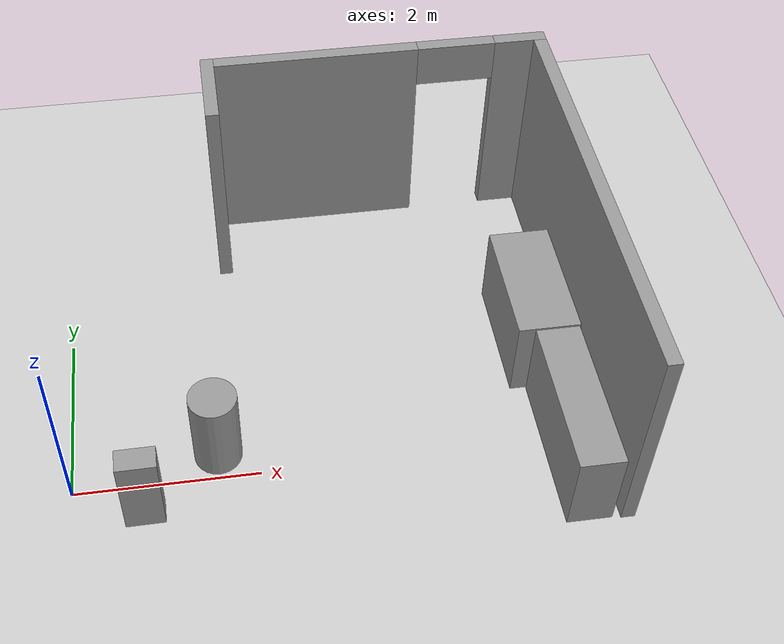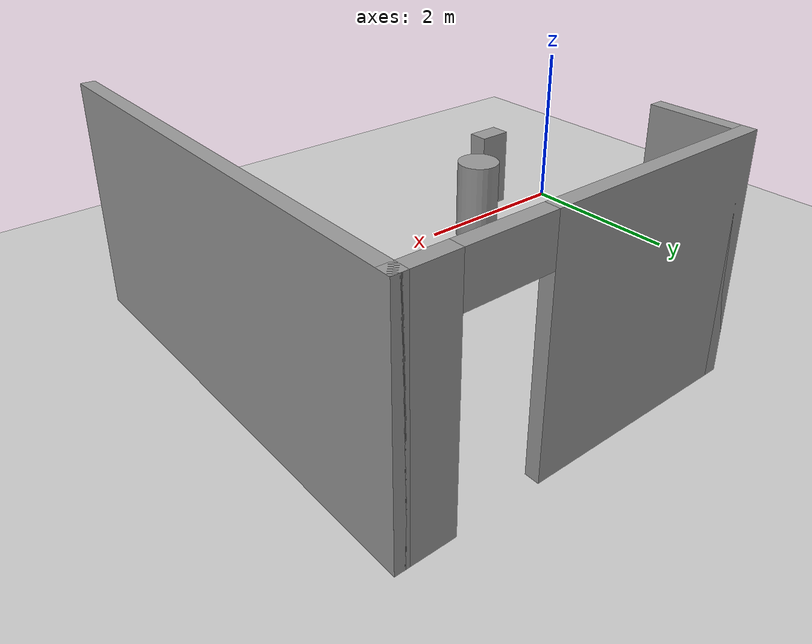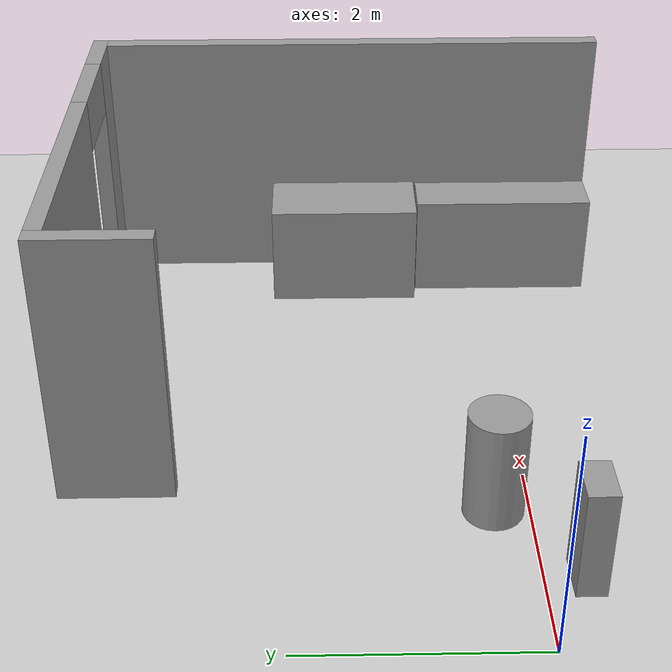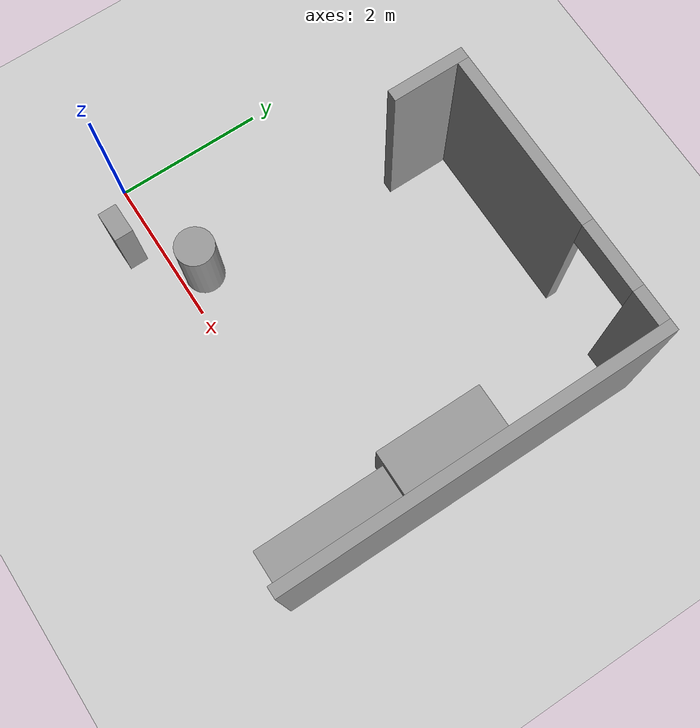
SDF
<sdf version="1.6">
 <world name="default">
  <model name="ground_plane">
   <static>1</static>
   <link name="link">
    <collision name="collision">
     <geometry><plane><normal>0 0 1</normal><size>100 100</size></plane></geometry>
     <surface><friction><ode><mu>100</mu><mu2>50</mu2></ode></friction></surface>
    </collision>
    <visual name="visual">
     <cast_shadows>0</cast_shadows>
     <geometry><plane><normal>0 0 1</normal><size>100 100</size></plane></geometry>
     <material>
      <script><uri>file://media/materials/scripts/gazebo.material</uri><name>Gazebo/Grey</name></script>
     </material>
    </visual>
   </link>
  </model>
  <model name="cma_L5">
   <pose>3.77502 1.45512 0 0 -0 0</pose>
   <link name="Wall_0">
    <collision name="Wall_0_Collision">
     <geometry><box><size>1 0.15 2.5</size></box></geometry>
     <pose>0 0 1.25 0 -0 0</pose>
    </collision>
    <visual name="Wall_0_Visual">
     <pose>0 0 1.25 0 -0 0</pose>
     <geometry><box><size>1 0.15 2.5</size></box></geometry>
     <material>
      <script><uri>file://media/materials/scripts/gazebo.material</uri><name>Gazebo/Grey</name></script>
      <ambient>1 1 1 1</ambient>
     </material>
    </visual>
    <pose>-1.925 2 0 0 -0 1.5708</pose>
   </link>
   <link name="Wall_1">
    <pose>0 2.425 0 0 -0 0</pose>
    <visual name="Wall_1_Visual_0">
     <pose>-0.7525 0 1.25 0 -0 0</pose>
     <geometry><box><size>2.495 0.15 2.5</size></box></geometry>
     <material>
      <script><uri>file://media/materials/scripts/gazebo.material</uri><name>Gazebo/Grey</name></script>
      <ambient>1 1 1 1</ambient>
     </material>
    </visual>
    <collision name="Wall_1_Collision_0">
     <geometry><box><size>2.495 0.15 2.5</size></box></geometry>
     <pose>-0.7525 0 1.25 0 -0 0</pose>
    </collision>
    <visual name="Wall_1_Visual_1">
     <pose>1.6975 0 1.25 0 -0 0</pose>
     <geometry><box><size>0.605 0.15 2.5</size></box></geometry>
     <material>
      <script><uri>file://media/materials/scripts/gazebo.material</uri><name>Gazebo/Grey</name></script>
      <ambient>1 1 1 1</ambient>
     </material>
    </visual>
    <collision name="Wall_1_Collision_1">
     <geometry><box><size>0.605 0.15 2.5</size></box></geometry>
     <pose>1.6975 0 1.25 0 -0 0</pose>
    </collision>
    <visual name="Wall_1_Visual_2">
     <pose>0.945 0 2.25 0 -0 0</pose>
     <geometry><box><size>0.9 0.15 0.5</size></box></geometry>
     <material>
      <script><uri>file://media/materials/scripts/gazebo.material</uri><name>Gazebo/Grey</name></script>
      <ambient>1 1 1 1</ambient>
     </material>
    </visual>
    <collision name="Wall_1_Collision_2">
     <geometry><box><size>0.9 0.15 0.5</size></box></geometry>
     <pose>0.945 0 2.25 0 -0 0</pose>
    </collision>
   </link>
   <link name="Wall_3">
    <collision name="Wall_3_Collision">
     <geometry><box><size>5 0.15 2.5</size></box></geometry>
     <pose>0 0 1.25 0 -0 0</pose>
    </collision>
    <visual name="Wall_3_Visual">
     <pose>0 0 1.25 0 -0 0</pose>
     <geometry><box><size>5 0.15 2.5</size></box></geometry>
     <material>
      <script><uri>file://media/materials/scripts/gazebo.material</uri><name>Gazebo/Grey</name></script>
      <ambient>1 1 1 1</ambient>
     </material>
    </visual>
    <pose>1.925 0 0 0 0 -1.5708</pose>
   </link>
   <static>1</static>
  </model>
  <model name="cma_picador_0">
   <link name="link_2">
    <pose>-0.7258 -1.69104 0 0 -0 0</pose>
    <inertial>
     <mass>0.104732</mass>
     <inertia>
      <ixx>0.00927906</ixx>
      <ixy>0</ixy>
      <ixz>0</ixz>
      <iyy>0.010243</iyy>
      <iyz>0</iyz>
      <izz>0.00206672</izz>
     </inertia>
    </inertial>
    <visual name="visual">
     <geometry><box><size>0.416688 0.25134 1</size></box></geometry>
     <material>
      <lighting>1</lighting>
      <script><uri>file://media/materials/scripts/gazebo.material</uri><name>Gazebo/Grey</name></script>
      <ambient>0.3 0.3 0.3 1</ambient>
      <diffuse>0.7 0.7 0.7 1</diffuse>
      <specular>0.01 0.01 0.01 1</specular>
      <emissive>0 0 0 1</emissive>
     </material>
    </visual>
    <collision name="collision">
     <geometry><box><size>0.416688 0.25134 1</size></box></geometry>
     <surface>
      <friction>
       <ode><mu>1</mu><mu2>1</mu2><fdir1>0 0 0</fdir1><slip1>0</slip1><slip2>0</slip2></ode>
       <torsional>
        <coefficient>1</coefficient>
        <patch_radius>0</patch_radius>
        <surface_radius>0</surface_radius>
        <use_patch_radius>1</use_patch_radius>
        <ode><slip>0</slip></ode>
       </torsional>
      </friction>
      <bounce><restitution_coefficient>0</restitution_coefficient><threshold>1e+06</threshold></bounce>
      <contact>
       <collide_without_contact>0</collide_without_contact>
       <collide_without_contact_bitmask>1</collide_without_contact_bitmask>
       <collide_bitmask>1</collide_bitmask>
       <ode>
        <soft_cfm>0</soft_cfm>
        <soft_erp>0.2</soft_erp>
        <kp>1e+13</kp>
        <kd>1</kd>
        <max_vel>0.01</max_vel>
        <min_depth>0</min_depth>
       </ode>
       <bullet>
        <split_impulse>1</split_impulse>
        <split_impulse_penetration_threshold>-0.01</split_impulse_penetration_threshold>
        <soft_cfm>0</soft_cfm>
        <soft_erp>0.2</soft_erp>
        <kp>1e+13</kp>
        <kd>1</kd>
       </bullet>
      </contact>
     </surface>
    </collision>
   </link>
   <static>0</static>
   <pose>1.47452 1.35884 0.500006 2e-06 -4e-06 0.007506</pose>
  </model>
  <model name="cma_cesto">
   <link name="link_1">
    <pose>-0.329659 -1.55494 0 0 -0 0</pose>
    <inertial>
     <mass>0.267897</mass>
     <inertia>
      <ixx>0.0268102</ixx>
      <ixy>0</ixy>
      <ixz>0</ixz>
      <iyy>0.0268102</iyy>
      <iyz>0</iyz>
      <izz>0.00897111</izz>
     </inertia>
    </inertial>
    <visual name="visual">
     <geometry><cylinder><radius>0.258792</radius><length>1</length></cylinder></geometry>
     <material>
      <lighting>1</lighting>
      <script><uri>file://media/materials/scripts/gazebo.material</uri><name>Gazebo/Grey</name></script>
      <ambient>0.3 0.3 0.3 1</ambient>
      <diffuse>0.7 0.7 0.7 1</diffuse>
      <specular>0.01 0.01 0.01 1</specular>
      <emissive>0 0 0 1</emissive>
     </material>
    </visual>
    <collision name="collision">
     <geometry><cylinder><radius>0.258792</radius><length>1</length></cylinder></geometry>
     <surface>
      <friction>
       <ode><mu>1</mu><mu2>1</mu2><fdir1>0 0 0</fdir1><slip1>0</slip1><slip2>0</slip2></ode>
       <torsional>
        <coefficient>1</coefficient>
        <patch_radius>0</patch_radius>
        <surface_radius>0</surface_radius>
        <use_patch_radius>1</use_patch_radius>
        <ode><slip>0</slip></ode>
       </torsional>
      </friction>
      <bounce><restitution_coefficient>0</restitution_coefficient><threshold>1e+06</threshold></bounce>
      <contact>
       <collide_without_contact>0</collide_without_contact>
       <collide_without_contact_bitmask>1</collide_without_contact_bitmask>
       <collide_bitmask>1</collide_bitmask>
       <ode>
        <soft_cfm>0</soft_cfm>
        <soft_erp>0.2</soft_erp>
        <kp>1e+13</kp>
        <kd>1</kd>
        <max_vel>0.01</max_vel>
        <min_depth>0</min_depth>
       </ode>
       <bullet>
        <split_impulse>1</split_impulse>
        <split_impulse_penetration_threshold>-0.01</split_impulse_penetration_threshold>
        <soft_cfm>0</soft_cfm>
        <soft_erp>0.2</soft_erp>
        <kp>1e+13</kp>
        <kd>1</kd>
       </bullet>
      </contact>
     </surface>
    </collision>
   </link>
   <static>0</static>
   <pose>1.91097 1.85863 0.499998 0 0 -0.013205</pose>
  </model>
  <model name="cma_geladeira">
   <link name="link_2">
    <pose>3e-06 -4e-06 0 0 -0 0</pose>
    <inertial>
     <mass>0.994085</mass>
     <inertia>
      <ixx>0.258405</ixx>
      <ixy>0</ixy>
      <ixz>0</ixz>
      <iyy>0.121468</iyy>
      <iyz>0</iyz>
      <izz>0.214192</izz>
     </inertia>
    </inertial>
    <visual name="visual">
     <geometry><box><size>0.682844 1.45579 1</size></box></geometry>
     <material>
      <lighting>1</lighting>
      <script><uri>file://media/materials/scripts/gazebo.material</uri><name>Gazebo/Grey</name></script>
      <ambient>0.3 0.3 0.3 1</ambient>
      <diffuse>0.7 0.7 0.7 1</diffuse>
      <specular>0.01 0.01 0.01 1</specular>
      <emissive>0 0 0 1</emissive>
     </material>
    </visual>
    <collision name="collision">
     <geometry><box><size>0.682844 1.45579 1</size></box></geometry>
     <surface>
      <friction>
       <ode><mu>1</mu><mu2>1</mu2><fdir1>0 0 0</fdir1><slip1>0</slip1><slip2>0</slip2></ode>
       <torsional>
        <coefficient>1</coefficient>
        <patch_radius>0</patch_radius>
        <surface_radius>0</surface_radius>
        <use_patch_radius>1</use_patch_radius>
        <ode><slip>0</slip></ode>
       </torsional>
      </friction>
      <bounce><restitution_coefficient>0</restitution_coefficient><threshold>1e+06</threshold></bounce>
      <contact>
       <collide_without_contact>0</collide_without_contact>
       <collide_without_contact_bitmask>1</collide_without_contact_bitmask>
       <collide_bitmask>1</collide_bitmask>
       <ode>
        <soft_cfm>0</soft_cfm>
        <soft_erp>0.2</soft_erp>
        <kp>1e+13</kp>
        <kd>1</kd>
        <max_vel>0.01</max_vel>
        <min_depth>0</min_depth>
       </ode>
       <bullet>
        <split_impulse>1</split_impulse>
        <split_impulse_penetration_threshold>-0.01</split_impulse_penetration_threshold>
        <soft_cfm>0</soft_cfm>
        <soft_erp>0.2</soft_erp>
        <kp>1e+13</kp>
        <kd>1</kd>
       </bullet>
      </contact>
     </surface>
    </collision>
   </link>
   <static>0</static>
   <pose>5.2196 1.47717 0.499998 0 -8e-06 -8e-06</pose>
  </model>
  <model name="cma_armario_coz_190x40cm">
   <link name="link_3">
    <pose>-3e-06 1e-06 0 0 -0 0</pose>
    <inertial>
     <mass>0.848618</mass>
     <inertia>
      <ixx>0.28876</ixx>
      <ixy>0</ixy>
      <ixz>0</ixz>
      <iyy>0.0872359</iyy>
      <iyz>0</iyz>
      <izz>0.234559</izz>
     </inertia>
    </inertial>
    <visual name="visual">
     <geometry><box><size>0.483301 1.75592 1</size></box></geometry>
     <material>
      <lighting>1</lighting>
      <script><uri>file://media/materials/scripts/gazebo.material</uri><name>Gazebo/Grey</name></script>
      <ambient>0.3 0.3 0.3 1</ambient>
      <diffuse>0.7 0.7 0.7 1</diffuse>
      <specular>0.01 0.01 0.01 1</specular>
      <emissive>0 0 0 1</emissive>
     </material>
    </visual>
    <collision name="collision">
     <geometry><box><size>0.483301 1.75592 1</size></box></geometry>
     <surface>
      <friction>
       <ode><mu>1</mu><mu2>1</mu2><fdir1>0 0 0</fdir1><slip1>0</slip1><slip2>0</slip2></ode>
       <torsional>
        <coefficient>1</coefficient>
        <patch_radius>0</patch_radius>
        <surface_radius>0</surface_radius>
        <use_patch_radius>1</use_patch_radius>
        <ode><slip>0</slip></ode>
       </torsional>
      </friction>
      <bounce><restitution_coefficient>0</restitution_coefficient><threshold>1e+06</threshold></bounce>
      <contact>
       <collide_without_contact>0</collide_without_contact>
       <collide_without_contact_bitmask>1</collide_without_contact_bitmask>
       <collide_bitmask>1</collide_bitmask>
       <ode>
        <soft_cfm>0</soft_cfm>
        <soft_erp>0.2</soft_erp>
        <kp>1e+13</kp>
        <kd>1</kd>
        <max_vel>0.01</max_vel>
        <min_depth>0</min_depth>
       </ode>
       <bullet>
        <split_impulse>1</split_impulse>
        <split_impulse_penetration_threshold>-0.01</split_impulse_penetration_threshold>
        <soft_cfm>0</soft_cfm>
        <soft_erp>0.2</soft_erp>
        <kp>1e+13</kp>
        <kd>1</kd>
       </bullet>
      </contact>
     </surface>
    </collision>
   </link>
   <static>0</static>
   <pose>5.29765 -0.147707 0.499999 0 4e-06 -0.000237</pose>
  </model>
 </world>
</sdf>
